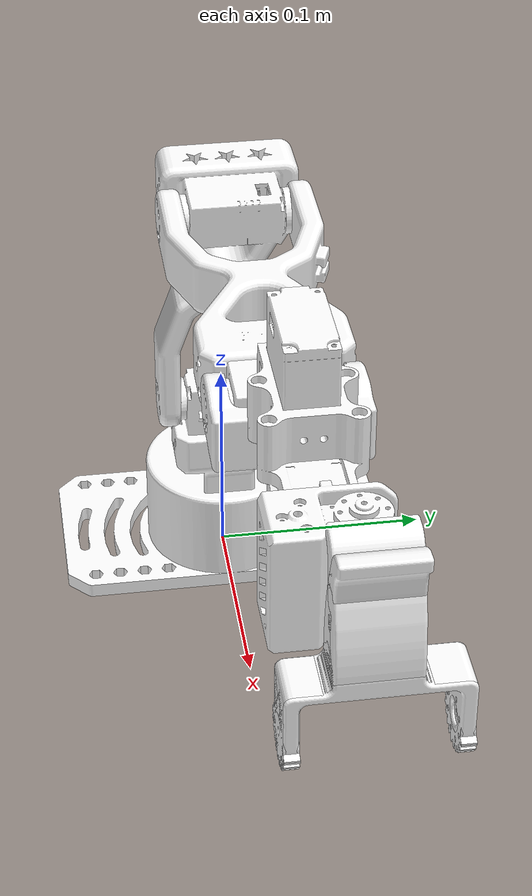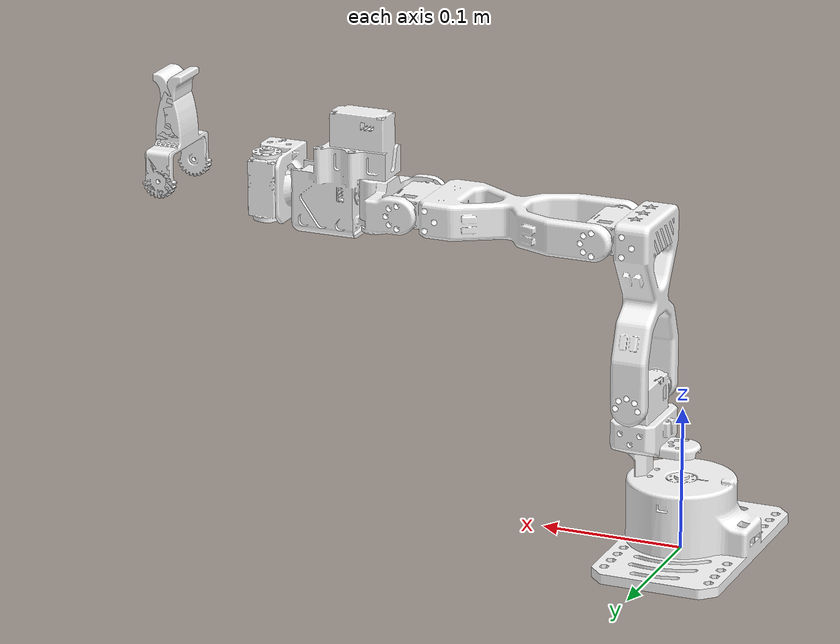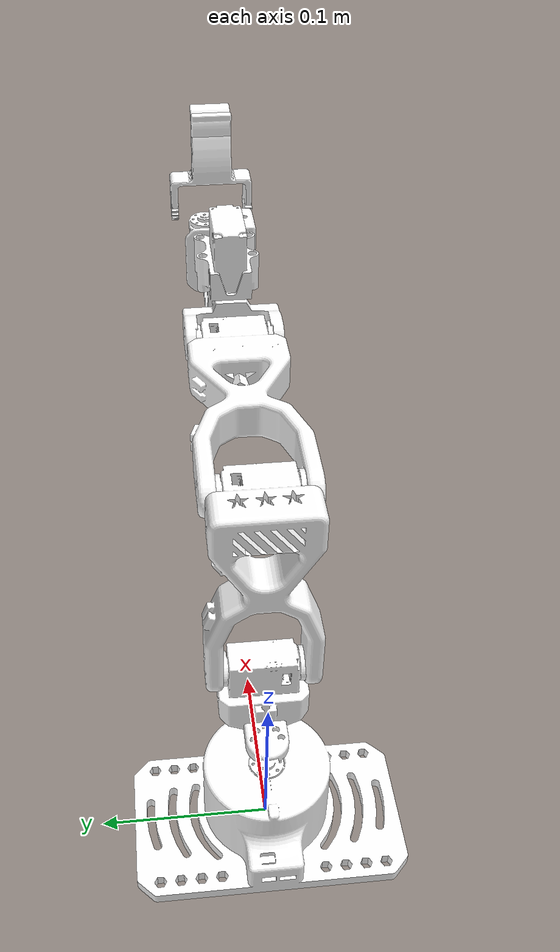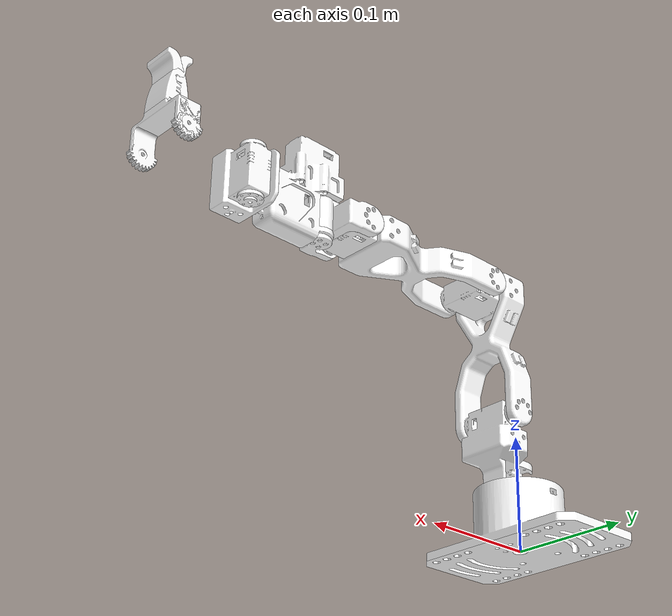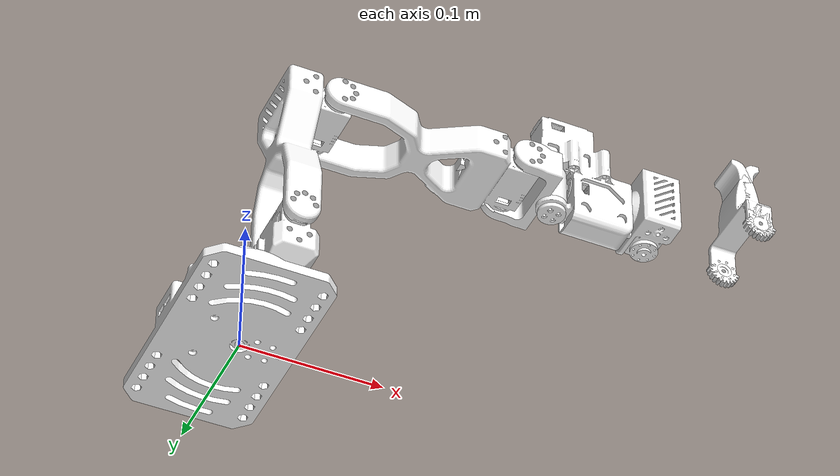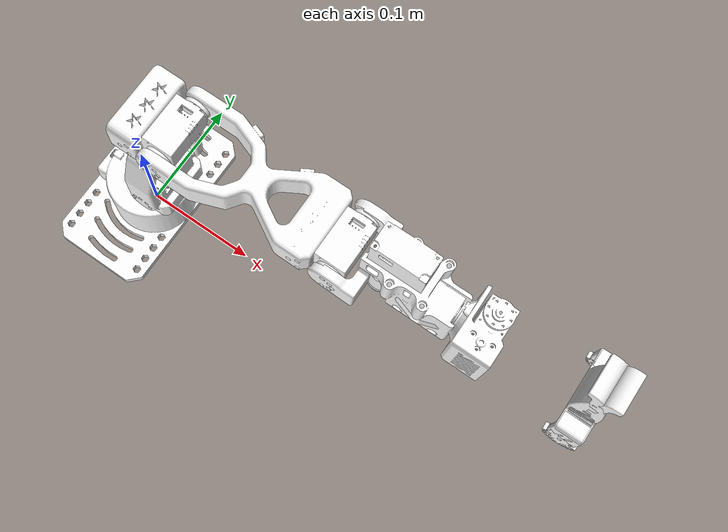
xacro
<?xml version="1.0"?>
<robot xmlns:xacro="http://www.ros.org/wiki/xacro" name="stararm102_description">
  <xacro:include filename="$(find stararm102_description)/urdf/stararm102_description.urdf"/>
  <xacro:include filename="$(find stararm102_moveit_config)/config/stararm102_description.ros2_control.xacro"/>
</robot>

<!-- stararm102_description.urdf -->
<robot
  name="stararm102_description">
      <!-- 添加虚拟根链接 -->
  <link name="world"/>

  <!-- 添加固定关节 -->
  <joint name="world_to_base" type="fixed">
    <parent link="world"/>
    <child link="base_link"/>
    <origin xyz="0 0 0" rpy="0 0 0"/>
  </joint>
  <link
    name="base_link">
    <inertial>
      <origin
        xyz="-0.0300632996335358 4.23029469302262E-06 0.0236059679332401"
        rpy="0 0 0" />
      <mass
        value="0.133140629988521" />
      <inertia
        ixx="9.75475153646954E-05"
        ixy="-5.70580611237351E-09"
        ixz="3.50145171357219E-06"
        iyy="7.63359480528202E-05"
        iyz="-8.67930496852705E-09"
        izz="9.48457088481919E-05" />
    </inertial>
    <visual>
      <origin
        xyz="0 0 0"
        rpy="0 0 0" />
      <geometry>
        <mesh
          filename="package://stararm102_description/meshes/base_link.STL" />
      </geometry>
      <material
        name="">
        <color
          rgba="1 1 1 1" />
      </material>
    </visual>
    <collision>
      <origin
        xyz="0 0 0"
        rpy="0 0 0" />
      <geometry>
        <mesh
          filename="package://stararm102_description/meshes/base_link.STL" />
      </geometry>
    </collision>
  </link>
  <link
    name="link1">
    <inertial>
      <origin
        xyz="0.0241278504598692 2.97078999306512E-05 0.0274468471158838"
        rpy="0 0 0" />
      <mass
        value="0.0490447462840961" />
      <inertia
        ixx="2.96403139602316E-05"
        ixy="-8.39151674795228E-10"
        ixz="-3.60040828150387E-06"
        iyy="2.95907005051813E-05"
        iyz="-8.33306207576828E-09"
        izz="1.26228781611057E-05" />
    </inertial>
    <visual>
      <origin
        xyz="0 0 0"
        rpy="0 0 0" />
      <geometry>
        <mesh
          filename="package://stararm102_description/meshes/link1.STL" />
      </geometry>
      <material
        name="">
        <color
          rgba="1 1 1 1" />
      </material>
    </visual>
    <collision>
      <origin
        xyz="0 0 0"
        rpy="0 0 0" />
      <geometry>
        <mesh
          filename="package://stararm102_description/meshes/link1.STL" />
      </geometry>
    </collision>
  </link>
  <joint
    name="joint1"
    type="revolute">
    <origin
      xyz="0 0 0.04475"
      rpy="0 0 0" />
    <parent
      link="base_link" />
    <child
      link="link1" />
    <axis
      xyz="0 0 -1" />
    <limit
      lower="-2.27"
      upper="2.27"
      effort="100"
      velocity="1" />
  </joint>
  <link
    name="link2">
    <inertial>
      <origin
        xyz="0.0729892507852211 -0.00160649145550098 -0.00019732369871768"
        rpy="0 0 0" />
      <mass
        value="0.0902416570859392" />
      <inertia
        ixx="4.19253099246556E-05"
        ixy="-2.25855581551639E-06"
        ixz="-4.44155834371899E-08"
        iyy="0.00015660712389644"
        iyz="-1.17494738458986E-08"
        izz="0.000125752449573264" />
    </inertial>
    <visual>
      <origin
        xyz="0 0 0"
        rpy="0 0 0" />
      <geometry>
        <mesh
          filename="package://stararm102_description/meshes/link2.STL" />
      </geometry>
      <material
        name="">
        <color
          rgba="1 1 1 1" />
      </material>
    </visual>
    <collision>
      <origin
        xyz="0 0 0"
        rpy="0 0 0" />
      <geometry>
        <mesh
          filename="package://stararm102_description/meshes/link2.STL" />
      </geometry>
    </collision>
  </link>
  <joint
    name="joint2"
    type="revolute">
    <origin
      xyz="0.02775 0 0.061925"
      rpy="1.5708 -1.5708 0" />
    <parent
      link="link1" />
    <child
      link="link2" />
    <axis
      xyz="0 0 -1" />
    <limit
      lower="-1.57"
      upper="1.57"
      effort="100"
      velocity="1" />
  </joint>
  <link
    name="link3">
    <inertial>
      <origin
        xyz="0.075237507815636 1.43180955125277E-05 -0.000199033367391119"
        rpy="0 0 0" />
      <mass
        value="0.092247950009267" />
      <inertia
        ixx="4.14780596161942E-05"
        ixy="1.53670997361533E-09"
        ixz="-2.04184589983835E-08"
        iyy="0.000152786299857704"
        iyz="-1.17528145438487E-09"
        izz="0.000120845855952267" />
    </inertial>
    <visual>
      <origin
        xyz="0 0 0"
        rpy="0 0 0" />
      <geometry>
        <mesh
          filename="package://stararm102_description/meshes/link3.STL" />
      </geometry>
      <material
        name="">
        <color
          rgba="1 1 1 1" />
      </material>
    </visual>
    <collision>
      <origin
        xyz="0 0 0"
        rpy="0 0 0" />
      <geometry>
        <mesh
          filename="package://stararm102_description/meshes/link3.STL" />
      </geometry>
    </collision>
  </link>
  <joint
    name="joint3"
    type="revolute">
    <origin
      xyz="0.11225 -0.026175 0"
      rpy="0 0 -1.5708" />
    <parent
      link="link2" />
    <child
      link="link3" />
    <axis
      xyz="0 0 -1" />
    <limit
      lower="-1.57"
      upper="1.57"
      effort="100"
      velocity="1" />
  </joint>
  <link
    name="link4">
    <inertial>
      <origin
        xyz="0.0196476212810571 -0.00122040006406537 -1.66728029773015E-05"
        rpy="0 0 0" />
      <mass
        value="0.0298155768600067" />
      <inertia
        ixx="1.13287289583413E-05"
        ixy="2.41907719305386E-08"
        ixz="7.43738348850089E-09"
        iyy="1.29843883333036E-05"
        iyz="5.45539379109613E-09"
        izz="5.59222447452988E-06" />
    </inertial>
    <visual>
      <origin
        xyz="0 0 0"
        rpy="0 0 0" />
      <geometry>
        <mesh
          filename="package://stararm102_description/meshes/link4.STL" />
      </geometry>
      <material
        name="">
        <color
          rgba="1 1 1 1" />
      </material>
    </visual>
    <collision>
      <origin
        xyz="0 0 0"
        rpy="0 0 0" />
      <geometry>
        <mesh
          filename="package://stararm102_description/meshes/link4.STL" />
      </geometry>
    </collision>
  </link>
  <joint
    name="joint4"
    type="revolute">
    <origin
      xyz="0.14117 0 0"
      rpy="0 0 0" />
    <parent
      link="link3" />
    <child
      link="link4" />
    <axis
      xyz="0 0 -1" />
    <limit
      lower="-1.57"
      upper="1.57"
      effort="100"
      velocity="1" />
  </joint>
  <link
    name="link5">
    <inertial>
      <origin
        xyz="0.0229686824522496 5.43222379498914E-07 0.0123129330887689"
        rpy="0 0 0" />
      <mass
        value="0.0455712723510246" />
      <inertia
        ixx="9.22596706562675E-06"
        ixy="-2.60094169039893E-12"
        ixz="4.23121647381554E-07"
        iyy="1.47418355948446E-05"
        iyz="1.59173410356726E-12"
        izz="1.33182922768924E-05" />
    </inertial>
    <visual>
      <origin
        xyz="0 0 0"
        rpy="0 0 0" />
      <geometry>
        <mesh
          filename="package://stararm102_description/meshes/link5.STL" />
      </geometry>
      <material
        name="">
        <color
          rgba="1 1 1 1" />
      </material>
    </visual>
    <collision>
      <origin
        xyz="0 0 0"
        rpy="0 0 0" />
      <geometry>
        <mesh
          filename="package://stararm102_description/meshes/link5.STL" />
      </geometry>
    </collision>
  </link>
  <joint
    name="joint5"
    type="revolute">
    <origin
      xyz="0.029 0 0"
      rpy="-1.5708 0 0" />
    <parent
      link="link4" />
    <child
      link="link5" />
    <axis
      xyz="0 0 -1" />
    <limit
      lower="-1.57"
      upper="1.57"
      effort="100"
      velocity="1" />
  </joint>
  <link
    name="link6">
    <inertial>
      <origin
        xyz="-0.00415459388524732 -6.87763721066437E-05 -0.0756167187403363"
        rpy="0 0 0" />
      <mass
        value="0.0277279216939168" />
      <inertia
        ixx="6.063125125658E-06"
        ixy="3.91296866902188E-08"
        ixz="1.0101601375488E-06"
        iyy="6.31326639534249E-06"
        iyz="-9.82075622763034E-09"
        izz="7.98591452521941E-06" />
    </inertial>
    <visual>
      <origin
        xyz="0 0 0"
        rpy="0 0 0" />
      <geometry>
        <mesh
          filename="package://stararm102_description/meshes/link6.STL" />
      </geometry>
      <material
        name="">
        <color
          rgba="1 1 1 1" />
      </material>
    </visual>
    <collision>
      <origin
        xyz="0 0 0"
        rpy="0 0 0" />
      <geometry>
        <mesh
          filename="package://stararm102_description/meshes/link6.STL" />
      </geometry>
    </collision>
  </link>
  <joint
    name="joint6"
    type="revolute">
    <origin
      xyz="0.14968 0 0.0038453"
      rpy="-1.5708 0 -1.5708" />
    <parent
      link="link5" />
    <child
      link="link6" />
    <axis
      xyz="0 0 -1" />
    <limit
      lower="-2.27"
      upper="2.27"
      effort="100"
      velocity="1" />
  </joint>
  <link
    name="link7_left">
    <inertial>
      <origin
        xyz="0.000166942107998391 -0.0396172629342348 0.012470890893248"
        rpy="0 0 0" />
      <mass
        value="0.0255901502803906" />
      <inertia
        ixx="1.09563241253275E-05"
        ixy="7.44254767434469E-08"
        ixz="7.89954596848984E-10"
        iyy="6.66936792078847E-06"
        iyz="3.40119191817114E-07"
        izz="1.63416593378716E-05" />
    </inertial>
    <visual>
      <origin
        xyz="0 0 0"
        rpy="0 0 0" />
      <geometry>
        <mesh
          filename="package://stararm102_description/meshes/link7_left.STL" />
      </geometry>
      <material
        name="">
        <color
          rgba="1 1 1 1" />
      </material>
    </visual>
    <collision>
      <origin
        xyz="0 0 0"
        rpy="0 0 0" />
      <geometry>
        <mesh
          filename="package://stararm102_description/meshes/link7_left.STL" />
      </geometry>
    </collision>
  </link>
  <joint
    name="joint7_left"
    type="prismatic">
    <origin
      xyz="0 0.00090027 0"
      rpy="1.5708 0 -1.5708" />
    <parent
      link="link6" />
    <child
      link="link7_left" />
    <axis
      xyz="0 0 1" />
    <limit
      lower="0"
      upper="0.025"
      effort="5"
      velocity="3.14" />
  </joint>
  <link
    name="link7_right">
    <inertial>
      <origin
        xyz="0.000247064270466085 -0.0382132639534428 -0.00983566877683726"
        rpy="0 0 0" />
      <mass
        value="0.0246485351672712" />
      <inertia
        ixx="9.86971440894811E-06"
        ixy="1.28428957867994E-07"
        ixz="-8.80778532977007E-10"
        iyy="5.87737058201296E-06"
        iyz="-3.7706601751617E-07"
        izz="1.44729317459416E-05" />
    </inertial>
    <visual>
      <origin
        xyz="0 0 0"
        rpy="0 0 0" />
      <geometry>
        <mesh
          filename="package://stararm102_description/meshes/link7_right.STL" />
      </geometry>
      <material
        name="">
        <color
          rgba="1 1 1 1" />
      </material>
    </visual>
    <collision>
      <origin
        xyz="0 0 0"
        rpy="0 0 0" />
      <geometry>
        <mesh
          filename="package://stararm102_description/meshes/link7_right.STL" />
      </geometry>
    </collision>
  </link>
  <joint
    name="joint7_right"
    type="prismatic">
    <origin
      xyz="0 0.00090027 0"
      rpy="1.5708 0 -1.5708" />
    <parent
      link="link6" />
    <child
      link="link7_right" />
    <axis
      xyz="0 0 -1" />
    <limit
      lower="-0.025"
      upper="0"
      effort="5"
      velocity="3.14" />
    <mimic joint="joint7_left" />
  </joint>
</robot>
